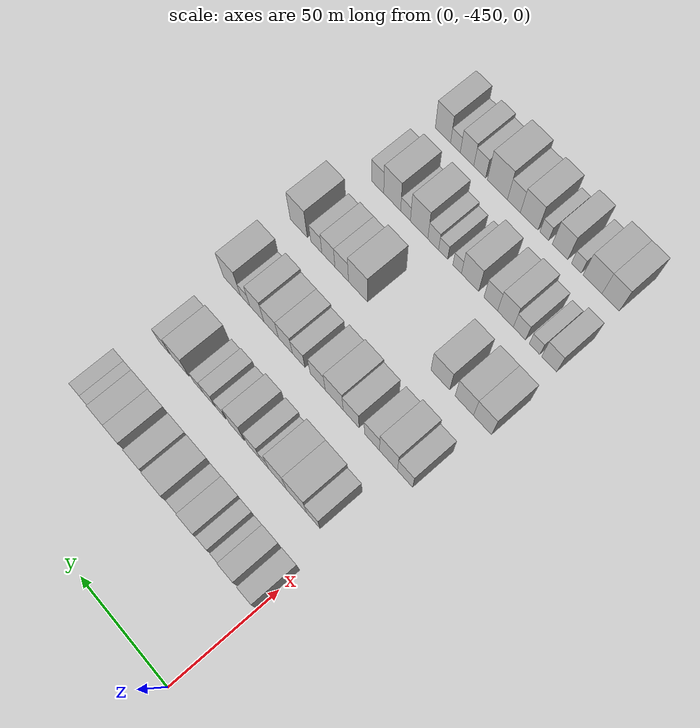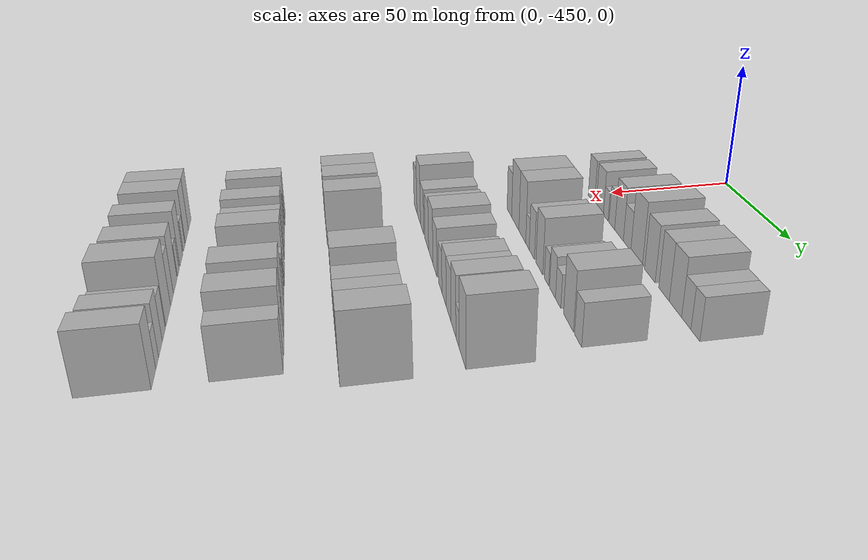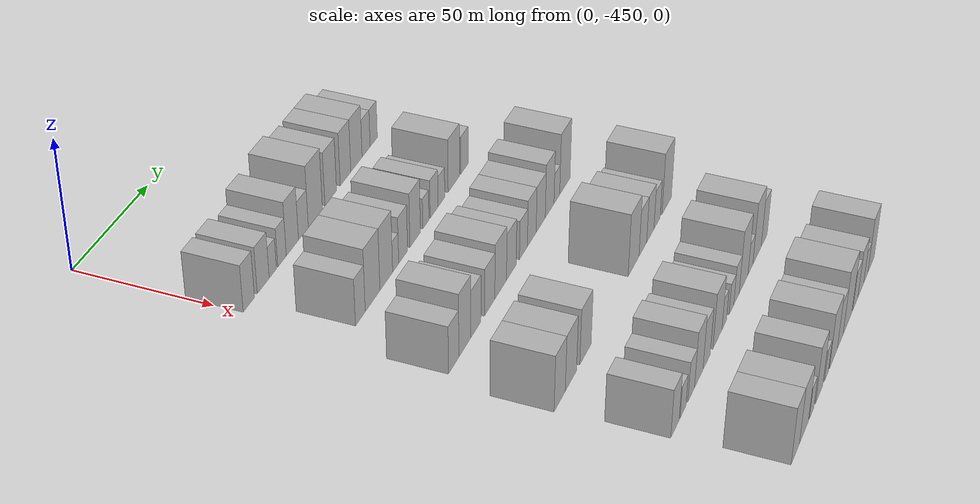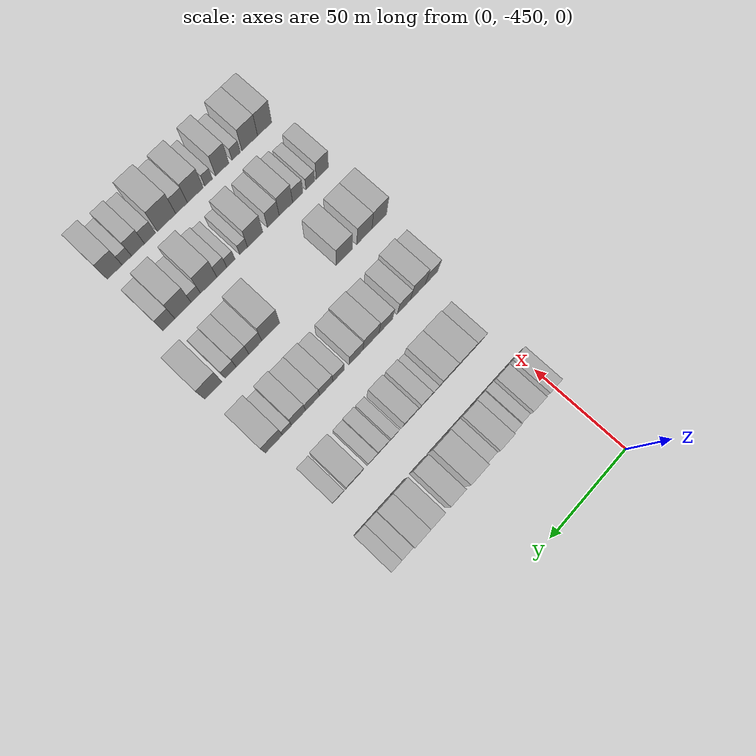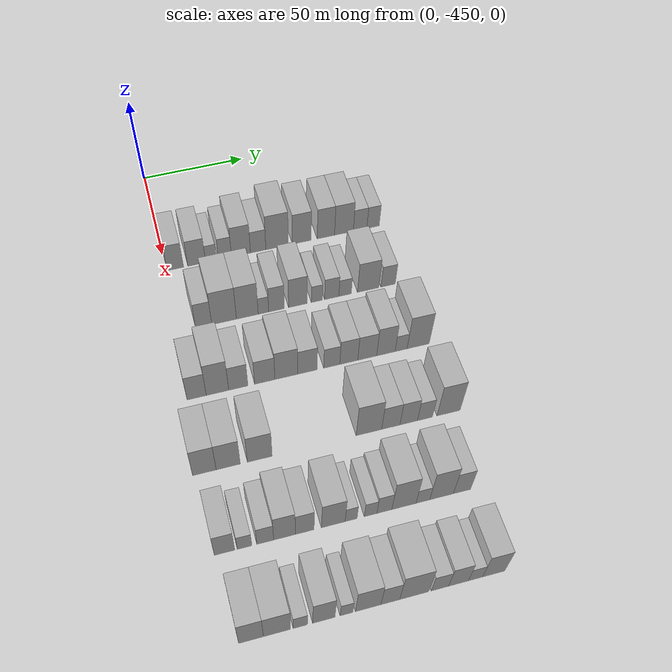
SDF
<sdf version="1.6">
 <world name="default">
  <model name="building_14">
   <static>1</static>
   <pose>50.0000 -445.6927 0 0.000000 0.000000 0.000000</pose>
   <link name="link">
    <pose>0 0 9.00 0 0 0</pose>
    <collision name="collision"><geometry><box><size>20.0000 7.8514 18.0000</size></box></geometry></collision>
    <visual name="visual">
     <cast_shadows>0</cast_shadows>
     <geometry><box><size>20.0000 7.8514 18.0000</size></box></geometry>
     <material>
      <script>
       <uri>model://HANNAS_wall/materials/scripts</uri>
       <uri>model://HANNAS_wall/materials/textures</uri>
       <name>vrc/HANNAS_wall</name>
      </script>
     </material>
    </visual>
   </link>
  </model>
  <model name="building_15">
   <static>1</static>
   <pose>50.0000 -435.5037 0 0.000000 0.000000 0.000000</pose>
   <link name="link">
    <pose>0 0 9.00 0 0 0</pose>
    <collision name="collision"><geometry><box><size>20.0000 8.5266 18.0000</size></box></geometry></collision>
    <visual name="visual">
     <cast_shadows>0</cast_shadows>
     <geometry><box><size>20.0000 8.5266 18.0000</size></box></geometry>
     <material>
      <script>
       <uri>model://HANNAS_wall/materials/scripts</uri>
       <uri>model://HANNAS_wall/materials/textures</uri>
       <name>vrc/HANNAS_wall</name>
      </script>
     </material>
    </visual>
   </link>
  </model>
  <model name="building_16">
   <static>1</static>
   <pose>50.0000 -428.6099 0 0.000000 0.000000 0.000000</pose>
   <link name="link">
    <pose>0 0 6.00 0 0 0</pose>
    <collision name="collision"><geometry><box><size>20.0000 5.2610 12.0000</size></box></geometry></collision>
    <visual name="visual">
     <cast_shadows>0</cast_shadows>
     <geometry><box><size>20.0000 5.2610 12.0000</size></box></geometry>
     <material>
      <script>
       <uri>model://HANNAS_wall/materials/scripts</uri>
       <uri>model://HANNAS_wall/materials/textures</uri>
       <name>vrc/HANNAS_wall</name>
      </script>
     </material>
    </visual>
   </link>
  </model>
  <model name="building_17">
   <static>1</static>
   <pose>50.0000 -421.8462 0 0.000000 0.000000 0.000000</pose>
   <link name="link">
    <pose>0 0 7.50 0 0 0</pose>
    <collision name="collision"><geometry><box><size>20.0000 6.2665 15.0000</size></box></geometry></collision>
    <visual name="visual">
     <cast_shadows>0</cast_shadows>
     <geometry><box><size>20.0000 6.2665 15.0000</size></box></geometry>
     <material>
      <script>
       <uri>model://HANNAS_wall/materials/scripts</uri>
       <uri>model://HANNAS_wall/materials/textures</uri>
       <name>vrc/HANNAS_wall</name>
      </script>
     </material>
    </visual>
   </link>
  </model>
  <model name="building_18">
   <static>1</static>
   <pose>50.0000 -414.1293 0 0.000000 0.000000 0.000000</pose>
   <link name="link">
    <pose>0 0 10.50 0 0 0</pose>
    <collision name="collision"><geometry><box><size>20.0000 9.1672 21.0000</size></box></geometry></collision>
    <visual name="visual">
     <cast_shadows>0</cast_shadows>
     <geometry><box><size>20.0000 9.1672 21.0000</size></box></geometry>
     <material>
      <script>
       <uri>model://HANNAS_wall/materials/scripts</uri>
       <uri>model://HANNAS_wall/materials/textures</uri>
       <name>vrc/HANNAS_wall</name>
      </script>
     </material>
    </visual>
   </link>
  </model>
  <model name="building_19">
   <static>1</static>
   <pose>50.0000 -405.8031 0 0.000000 0.000000 0.000000</pose>
   <link name="link">
    <pose>0 0 7.50 0 0 0</pose>
    <collision name="collision"><geometry><box><size>20.0000 7.4852 15.0000</size></box></geometry></collision>
    <visual name="visual">
     <cast_shadows>0</cast_shadows>
     <geometry><box><size>20.0000 7.4852 15.0000</size></box></geometry>
     <material>
      <script>
       <uri>model://HANNAS_wall/materials/scripts</uri>
       <uri>model://HANNAS_wall/materials/textures</uri>
       <name>vrc/HANNAS_wall</name>
      </script>
     </material>
    </visual>
   </link>
  </model>
  <model name="building_20">
   <static>1</static>
   <pose>50.0000 -396.5581 0 0.000000 0.000000 0.000000</pose>
   <link name="link">
    <pose>0 0 12.00 0 0 0</pose>
    <collision name="collision"><geometry><box><size>20.0000 11.0049 24.0000</size></box></geometry></collision>
    <visual name="visual">
     <cast_shadows>0</cast_shadows>
     <geometry><box><size>20.0000 11.0049 24.0000</size></box></geometry>
     <material>
      <script>
       <uri>model://HANNAS_wall/materials/scripts</uri>
       <uri>model://HANNAS_wall/materials/textures</uri>
       <name>vrc/HANNAS_wall</name>
      </script>
     </material>
    </visual>
   </link>
  </model>
  <model name="building_21">
   <static>1</static>
   <pose>50.0000 -384.4108 0 0.000000 0.000000 0.000000</pose>
   <link name="link">
    <pose>0 0 10.50 0 0 0</pose>
    <collision name="collision"><geometry><box><size>20.0000 9.2897 21.0000</size></box></geometry></collision>
    <visual name="visual">
     <cast_shadows>0</cast_shadows>
     <geometry><box><size>20.0000 9.2897 21.0000</size></box></geometry>
     <material>
      <script>
       <uri>model://HANNAS_wall/materials/scripts</uri>
       <uri>model://HANNAS_wall/materials/textures</uri>
       <name>vrc/HANNAS_wall</name>
      </script>
     </material>
    </visual>
   </link>
  </model>
  <model name="building_22">
   <static>1</static>
   <pose>50.0000 -372.4358 0 0.000000 0.000000 0.000000</pose>
   <link name="link">
    <pose>0 0 10.50 0 0 0</pose>
    <collision name="collision"><geometry><box><size>20.0000 8.6601 21.0000</size></box></geometry></collision>
    <visual name="visual">
     <cast_shadows>0</cast_shadows>
     <geometry><box><size>20.0000 8.6601 21.0000</size></box></geometry>
     <material>
      <script>
       <uri>model://HANNAS_wall/materials/scripts</uri>
       <uri>model://HANNAS_wall/materials/textures</uri>
       <name>vrc/HANNAS_wall</name>
      </script>
     </material>
    </visual>
   </link>
  </model>
  <model name="building_23">
   <static>1</static>
   <pose>50.0000 -363.3871 0 0.000000 0.000000 0.000000</pose>
   <link name="link">
    <pose>0 0 10.50 0 0 0</pose>
    <collision name="collision"><geometry><box><size>20.0000 9.4374 21.0000</size></box></geometry></collision>
    <visual name="visual">
     <cast_shadows>0</cast_shadows>
     <geometry><box><size>20.0000 9.4374 21.0000</size></box></geometry>
     <material>
      <script>
       <uri>model://HANNAS_wall/materials/scripts</uri>
       <uri>model://HANNAS_wall/materials/textures</uri>
       <name>vrc/HANNAS_wall</name>
      </script>
     </material>
    </visual>
   </link>
  </model>
  <model name="building_24">
   <static>1</static>
   <pose>50.0000 -355.2598 0 0.000000 0.000000 0.000000</pose>
   <link name="link">
    <pose>0 0 7.50 0 0 0</pose>
    <collision name="collision"><geometry><box><size>20.0000 6.8172 15.0000</size></box></geometry></collision>
    <visual name="visual">
     <cast_shadows>0</cast_shadows>
     <geometry><box><size>20.0000 6.8172 15.0000</size></box></geometry>
     <material>
      <script>
       <uri>model://HANNAS_wall/materials/scripts</uri>
       <uri>model://HANNAS_wall/materials/textures</uri>
       <name>vrc/HANNAS_wall</name>
      </script>
     </material>
    </visual>
   </link>
  </model>
  <model name="building_25">
   <static>1</static>
   <pose>50.0000 -348.7468 0 0.000000 0.000000 0.000000</pose>
   <link name="link">
    <pose>0 0 7.50 0 0 0</pose>
    <collision name="collision"><geometry><box><size>20.0000 6.2089 15.0000</size></box></geometry></collision>
    <visual name="visual">
     <cast_shadows>0</cast_shadows>
     <geometry><box><size>20.0000 6.2089 15.0000</size></box></geometry>
     <material>
      <script>
       <uri>model://HANNAS_wall/materials/scripts</uri>
       <uri>model://HANNAS_wall/materials/textures</uri>
       <name>vrc/HANNAS_wall</name>
      </script>
     </material>
    </visual>
   </link>
  </model>
  <model name="building_135">
   <static>1</static>
   <pose>85.0000 -439.4900 0 0.000000 0.000000 0.000000</pose>
   <link name="link">
    <pose>0 0 9.00 0 0 0</pose>
    <collision name="collision"><geometry><box><size>20.0000 7.4285 18.0000</size></box></geometry></collision>
    <visual name="visual">
     <cast_shadows>0</cast_shadows>
     <geometry><box><size>20.0000 7.4285 18.0000</size></box></geometry>
     <material>
      <script>
       <uri>model://HANNAS_wall/materials/scripts</uri>
       <uri>model://HANNAS_wall/materials/textures</uri>
       <name>vrc/HANNAS_wall</name>
      </script>
     </material>
    </visual>
   </link>
  </model>
  <model name="building_136">
   <static>1</static>
   <pose>85.0000 -430.0677 0 0.000000 0.000000 0.000000</pose>
   <link name="link">
    <pose>0 0 12.00 0 0 0</pose>
    <collision name="collision"><geometry><box><size>20.0000 11.4162 24.0000</size></box></geometry></collision>
    <visual name="visual">
     <cast_shadows>0</cast_shadows>
     <geometry><box><size>20.0000 11.4162 24.0000</size></box></geometry>
     <material>
      <script>
       <uri>model://HANNAS_wall/materials/scripts</uri>
       <uri>model://HANNAS_wall/materials/textures</uri>
       <name>vrc/HANNAS_wall</name>
      </script>
     </material>
    </visual>
   </link>
  </model>
  <model name="building_137">
   <static>1</static>
   <pose>85.0000 -419.3149 0 0.000000 0.000000 0.000000</pose>
   <link name="link">
    <pose>0 0 12.00 0 0 0</pose>
    <collision name="collision"><geometry><box><size>20.0000 10.0893 24.0000</size></box></geometry></collision>
    <visual name="visual">
     <cast_shadows>0</cast_shadows>
     <geometry><box><size>20.0000 10.0893 24.0000</size></box></geometry>
     <material>
      <script>
       <uri>model://HANNAS_wall/materials/scripts</uri>
       <uri>model://HANNAS_wall/materials/textures</uri>
       <name>vrc/HANNAS_wall</name>
      </script>
     </material>
    </visual>
   </link>
  </model>
  <model name="building_138">
   <static>1</static>
   <pose>85.0000 -411.8227 0 0.000000 0.000000 0.000000</pose>
   <link name="link">
    <pose>0 0 6.00 0 0 0</pose>
    <collision name="collision"><geometry><box><size>20.0000 4.8951 12.0000</size></box></geometry></collision>
    <visual name="visual">
     <cast_shadows>0</cast_shadows>
     <geometry><box><size>20.0000 4.8951 12.0000</size></box></geometry>
     <material>
      <script>
       <uri>model://HANNAS_wall/materials/scripts</uri>
       <uri>model://HANNAS_wall/materials/textures</uri>
       <name>vrc/HANNAS_wall</name>
      </script>
     </material>
    </visual>
   </link>
  </model>
  <model name="building_139">
   <static>1</static>
   <pose>85.0000 -405.7265 0 0.000000 0.000000 0.000000</pose>
   <link name="link">
    <pose>0 0 9.00 0 0 0</pose>
    <collision name="collision"><geometry><box><size>20.0000 7.2973 18.0000</size></box></geometry></collision>
    <visual name="visual">
     <cast_shadows>0</cast_shadows>
     <geometry><box><size>20.0000 7.2973 18.0000</size></box></geometry>
     <material>
      <script>
       <uri>model://HANNAS_wall/materials/scripts</uri>
       <uri>model://HANNAS_wall/materials/textures</uri>
       <name>vrc/HANNAS_wall</name>
      </script>
     </material>
    </visual>
   </link>
  </model>
  <model name="building_140">
   <static>1</static>
   <pose>85.0000 -395.7064 0 0.000000 0.000000 0.000000</pose>
   <link name="link">
    <pose>0 0 10.50 0 0 0</pose>
    <collision name="collision"><geometry><box><size>20.0000 8.7428 21.0000</size></box></geometry></collision>
    <visual name="visual">
     <cast_shadows>0</cast_shadows>
     <geometry><box><size>20.0000 8.7428 21.0000</size></box></geometry>
     <material>
      <script>
       <uri>model://HANNAS_wall/materials/scripts</uri>
       <uri>model://HANNAS_wall/materials/textures</uri>
       <name>vrc/HANNAS_wall</name>
      </script>
     </material>
    </visual>
   </link>
  </model>
  <model name="building_141">
   <static>1</static>
   <pose>85.0000 -386.6930 0 0.000000 0.000000 0.000000</pose>
   <link name="link">
    <pose>0 0 6.00 0 0 0</pose>
    <collision name="collision"><geometry><box><size>20.0000 5.2840 12.0000</size></box></geometry></collision>
    <visual name="visual">
     <cast_shadows>0</cast_shadows>
     <geometry><box><size>20.0000 5.2840 12.0000</size></box></geometry>
     <material>
      <script>
       <uri>model://HANNAS_wall/materials/scripts</uri>
       <uri>model://HANNAS_wall/materials/textures</uri>
       <name>vrc/HANNAS_wall</name>
      </script>
     </material>
    </visual>
   </link>
  </model>
  <model name="building_142">
   <static>1</static>
   <pose>85.0000 -379.6273 0 0.000000 0.000000 0.000000</pose>
   <link name="link">
    <pose>0 0 7.50 0 0 0</pose>
    <collision name="collision"><geometry><box><size>20.0000 6.8475 15.0000</size></box></geometry></collision>
    <visual name="visual">
     <cast_shadows>0</cast_shadows>
     <geometry><box><size>20.0000 6.8475 15.0000</size></box></geometry>
     <material>
      <script>
       <uri>model://HANNAS_wall/materials/scripts</uri>
       <uri>model://HANNAS_wall/materials/textures</uri>
       <name>vrc/HANNAS_wall</name>
      </script>
     </material>
    </visual>
   </link>
  </model>
  <model name="building_143">
   <static>1</static>
   <pose>85.0000 -373.2334 0 0.000000 0.000000 0.000000</pose>
   <link name="link">
    <pose>0 0 6.00 0 0 0</pose>
    <collision name="collision"><geometry><box><size>20.0000 5.9404 12.0000</size></box></geometry></collision>
    <visual name="visual">
     <cast_shadows>0</cast_shadows>
     <geometry><box><size>20.0000 5.9404 12.0000</size></box></geometry>
     <material>
      <script>
       <uri>model://HANNAS_wall/materials/scripts</uri>
       <uri>model://HANNAS_wall/materials/textures</uri>
       <name>vrc/HANNAS_wall</name>
      </script>
     </material>
    </visual>
   </link>
  </model>
  <model name="building_144">
   <static>1</static>
   <pose>85.0000 -362.0936 0 0.000000 0.000000 0.000000</pose>
   <link name="link">
    <pose>0 0 10.50 0 0 0</pose>
    <collision name="collision"><geometry><box><size>20.0000 10.3392 21.0000</size></box></geometry></collision>
    <visual name="visual">
     <cast_shadows>0</cast_shadows>
     <geometry><box><size>20.0000 10.3392 21.0000</size></box></geometry>
     <material>
      <script>
       <uri>model://HANNAS_wall/materials/scripts</uri>
       <uri>model://HANNAS_wall/materials/textures</uri>
       <name>vrc/HANNAS_wall</name>
      </script>
     </material>
    </visual>
   </link>
  </model>
  <model name="building_145">
   <static>1</static>
   <pose>85.0000 -352.4767 0 0.000000 0.000000 0.000000</pose>
   <link name="link">
    <pose>0 0 7.50 0 0 0</pose>
    <collision name="collision"><geometry><box><size>20.0000 6.8946 15.0000</size></box></geometry></collision>
    <visual name="visual">
     <cast_shadows>0</cast_shadows>
     <geometry><box><size>20.0000 6.8946 15.0000</size></box></geometry>
     <material>
      <script>
       <uri>model://HANNAS_wall/materials/scripts</uri>
       <uri>model://HANNAS_wall/materials/textures</uri>
       <name>vrc/HANNAS_wall</name>
      </script>
     </material>
    </visual>
   </link>
  </model>
  <model name="building_262">
   <static>1</static>
   <pose>120.0000 -449.8471 0 0.000000 0.000000 0.000000</pose>
   <link name="link">
    <pose>0 0 9.00 0 0 0</pose>
    <collision name="collision"><geometry><box><size>20.0000 8.3574 18.0000</size></box></geometry></collision>
    <visual name="visual">
     <cast_shadows>0</cast_shadows>
     <geometry><box><size>20.0000 8.3574 18.0000</size></box></geometry>
     <material>
      <script>
       <uri>model://HANNAS_wall/materials/scripts</uri>
       <uri>model://HANNAS_wall/materials/textures</uri>
       <name>vrc/HANNAS_wall</name>
      </script>
     </material>
    </visual>
   </link>
  </model>
  <model name="building_263">
   <static>1</static>
   <pose>120.0000 -440.7263 0 0.000000 0.000000 0.000000</pose>
   <link name="link">
    <pose>0 0 12.00 0 0 0</pose>
    <collision name="collision"><geometry><box><size>20.0000 9.8842 24.0000</size></box></geometry></collision>
    <visual name="visual">
     <cast_shadows>0</cast_shadows>
     <geometry><box><size>20.0000 9.8842 24.0000</size></box></geometry>
     <material>
      <script>
       <uri>model://HANNAS_wall/materials/scripts</uri>
       <uri>model://HANNAS_wall/materials/textures</uri>
       <name>vrc/HANNAS_wall</name>
      </script>
     </material>
    </visual>
   </link>
  </model>
  <model name="building_264">
   <static>1</static>
   <pose>120.0000 -431.5679 0 0.000000 0.000000 0.000000</pose>
   <link name="link">
    <pose>0 0 9.00 0 0 0</pose>
    <collision name="collision"><geometry><box><size>20.0000 8.4324 18.0000</size></box></geometry></collision>
    <visual name="visual">
     <cast_shadows>0</cast_shadows>
     <geometry><box><size>20.0000 8.4324 18.0000</size></box></geometry>
     <material>
      <script>
       <uri>model://HANNAS_wall/materials/scripts</uri>
       <uri>model://HANNAS_wall/materials/textures</uri>
       <name>vrc/HANNAS_wall</name>
      </script>
     </material>
    </visual>
   </link>
  </model>
  <model name="building_265">
   <static>1</static>
   <pose>120.0000 -419.8614 0 0.000000 0.000000 0.000000</pose>
   <link name="link">
    <pose>0 0 9.00 0 0 0</pose>
    <collision name="collision"><geometry><box><size>20.0000 8.9806 18.0000</size></box></geometry></collision>
    <visual name="visual">
     <cast_shadows>0</cast_shadows>
     <geometry><box><size>20.0000 8.9806 18.0000</size></box></geometry>
     <material>
      <script>
       <uri>model://HANNAS_wall/materials/scripts</uri>
       <uri>model://HANNAS_wall/materials/textures</uri>
       <name>vrc/HANNAS_wall</name>
      </script>
     </material>
    </visual>
   </link>
  </model>
  <model name="building_266">
   <static>1</static>
   <pose>120.0000 -410.2406 0 0.000000 0.000000 0.000000</pose>
   <link name="link">
    <pose>0 0 10.50 0 0 0</pose>
    <collision name="collision"><geometry><box><size>20.0000 10.2610 21.0000</size></box></geometry></collision>
    <visual name="visual">
     <cast_shadows>0</cast_shadows>
     <geometry><box><size>20.0000 10.2610 21.0000</size></box></geometry>
     <material>
      <script>
       <uri>model://HANNAS_wall/materials/scripts</uri>
       <uri>model://HANNAS_wall/materials/textures</uri>
       <name>vrc/HANNAS_wall</name>
      </script>
     </material>
    </visual>
   </link>
  </model>
  <model name="building_267">
   <static>1</static>
   <pose>120.0000 -400.7564 0 0.000000 0.000000 0.000000</pose>
   <link name="link">
    <pose>0 0 9.00 0 0 0</pose>
    <collision name="collision"><geometry><box><size>20.0000 8.7073 18.0000</size></box></geometry></collision>
    <visual name="visual">
     <cast_shadows>0</cast_shadows>
     <geometry><box><size>20.0000 8.7073 18.0000</size></box></geometry>
     <material>
      <script>
       <uri>model://HANNAS_wall/materials/scripts</uri>
       <uri>model://HANNAS_wall/materials/textures</uri>
       <name>vrc/HANNAS_wall</name>
      </script>
     </material>
    </visual>
   </link>
  </model>
  <model name="building_268">
   <static>1</static>
   <pose>120.0000 -389.7347 0 0.000000 0.000000 0.000000</pose>
   <link name="link">
    <pose>0 0 7.50 0 0 0</pose>
    <collision name="collision"><geometry><box><size>20.0000 7.3361 15.0000</size></box></geometry></collision>
    <visual name="visual">
     <cast_shadows>0</cast_shadows>
     <geometry><box><size>20.0000 7.3361 15.0000</size></box></geometry>
     <material>
      <script>
       <uri>model://HANNAS_wall/materials/scripts</uri>
       <uri>model://HANNAS_wall/materials/textures</uri>
       <name>vrc/HANNAS_wall</name>
      </script>
     </material>
    </visual>
   </link>
  </model>
  <model name="building_269">
   <static>1</static>
   <pose>120.0000 -381.9513 0 0.000000 0.000000 0.000000</pose>
   <link name="link">
    <pose>0 0 9.00 0 0 0</pose>
    <collision name="collision"><geometry><box><size>20.0000 8.2306 18.0000</size></box></geometry></collision>
    <visual name="visual">
     <cast_shadows>0</cast_shadows>
     <geometry><box><size>20.0000 8.2306 18.0000</size></box></geometry>
     <material>
      <script>
       <uri>model://HANNAS_wall/materials/scripts</uri>
       <uri>model://HANNAS_wall/materials/textures</uri>
       <name>vrc/HANNAS_wall</name>
      </script>
     </material>
    </visual>
   </link>
  </model>
  <model name="building_270">
   <static>1</static>
   <pose>120.0000 -373.4918 0 0.000000 0.000000 0.000000</pose>
   <link name="link">
    <pose>0 0 9.00 0 0 0</pose>
    <collision name="collision"><geometry><box><size>20.0000 8.6884 18.0000</size></box></geometry></collision>
    <visual name="visual">
     <cast_shadows>0</cast_shadows>
     <geometry><box><size>20.0000 8.6884 18.0000</size></box></geometry>
     <material>
      <script>
       <uri>model://HANNAS_wall/materials/scripts</uri>
       <uri>model://HANNAS_wall/materials/textures</uri>
       <name>vrc/HANNAS_wall</name>
      </script>
     </material>
    </visual>
   </link>
  </model>
  <model name="building_271">
   <static>1</static>
   <pose>120.0000 -364.8916 0 0.000000 0.000000 0.000000</pose>
   <link name="link">
    <pose>0 0 10.50 0 0 0</pose>
    <collision name="collision"><geometry><box><size>20.0000 8.5121 21.0000</size></box></geometry></collision>
    <visual name="visual">
     <cast_shadows>0</cast_shadows>
     <geometry><box><size>20.0000 8.5121 21.0000</size></box></geometry>
     <material>
      <script>
       <uri>model://HANNAS_wall/materials/scripts</uri>
       <uri>model://HANNAS_wall/materials/textures</uri>
       <name>vrc/HANNAS_wall</name>
      </script>
     </material>
    </visual>
   </link>
  </model>
  <model name="building_272">
   <static>1</static>
   <pose>120.0000 -357.8338 0 0.000000 0.000000 0.000000</pose>
   <link name="link">
    <pose>0 0 6.00 0 0 0</pose>
    <collision name="collision"><geometry><box><size>20.0000 5.6034 12.0000</size></box></geometry></collision>
    <visual name="visual">
     <cast_shadows>0</cast_shadows>
     <geometry><box><size>20.0000 5.6034 12.0000</size></box></geometry>
     <material>
      <script>
       <uri>model://HANNAS_wall/materials/scripts</uri>
       <uri>model://HANNAS_wall/materials/textures</uri>
       <name>vrc/HANNAS_wall</name>
      </script>
     </material>
    </visual>
   </link>
  </model>
  <model name="building_273">
   <static>1</static>
   <pose>120.0000 -349.8661 0 0.000000 0.000000 0.000000</pose>
   <link name="link">
    <pose>0 0 12.00 0 0 0</pose>
    <collision name="collision"><geometry><box><size>20.0000 10.3319 24.0000</size></box></geometry></collision>
    <visual name="visual">
     <cast_shadows>0</cast_shadows>
     <geometry><box><size>20.0000 10.3319 24.0000</size></box></geometry>
     <material>
      <script>
       <uri>model://HANNAS_wall/materials/scripts</uri>
       <uri>model://HANNAS_wall/materials/textures</uri>
       <name>vrc/HANNAS_wall</name>
      </script>
     </material>
    </visual>
   </link>
  </model>
  <model name="building_385">
   <static>1</static>
   <pose>155.0000 -453.8075 0 0.000000 0.000000 0.000000</pose>
   <link name="link">
    <pose>0 0 10.50 0 0 0</pose>
    <collision name="collision"><geometry><box><size>20.0000 9.8011 21.0000</size></box></geometry></collision>
    <visual name="visual">
     <cast_shadows>0</cast_shadows>
     <geometry><box><size>20.0000 9.8011 21.0000</size></box></geometry>
     <material>
      <script>
       <uri>model://HANNAS_wall/materials/scripts</uri>
       <uri>model://HANNAS_wall/materials/textures</uri>
       <name>vrc/HANNAS_wall</name>
      </script>
     </material>
    </visual>
   </link>
  </model>
  <model name="building_386">
   <static>1</static>
   <pose>155.0000 -443.8657 0 0.000000 0.000000 0.000000</pose>
   <link name="link">
    <pose>0 0 10.50 0 0 0</pose>
    <collision name="collision"><geometry><box><size>20.0000 10.0826 21.0000</size></box></geometry></collision>
    <visual name="visual">
     <cast_shadows>0</cast_shadows>
     <geometry><box><size>20.0000 10.0826 21.0000</size></box></geometry>
     <material>
      <script>
       <uri>model://HANNAS_wall/materials/scripts</uri>
       <uri>model://HANNAS_wall/materials/textures</uri>
       <name>vrc/HANNAS_wall</name>
      </script>
     </material>
    </visual>
   </link>
  </model>
  <model name="building_387">
   <static>1</static>
   <pose>155.0000 -430.5977 0 0.000000 0.000000 0.000000</pose>
   <link name="link">
    <pose>0 0 10.50 0 0 0</pose>
    <collision name="collision"><geometry><box><size>20.0000 10.4533 21.0000</size></box></geometry></collision>
    <visual name="visual">
     <cast_shadows>0</cast_shadows>
     <geometry><box><size>20.0000 10.4533 21.0000</size></box></geometry>
     <material>
      <script>
       <uri>model://HANNAS_wall/materials/scripts</uri>
       <uri>model://HANNAS_wall/materials/textures</uri>
       <name>vrc/HANNAS_wall</name>
      </script>
     </material>
    </visual>
   </link>
  </model>
  <model name="building_388">
   <static>1</static>
   <pose>155.0000 -383.6494 0 0.000000 0.000000 0.000000</pose>
   <link name="link">
    <pose>0 0 12.00 0 0 0</pose>
    <collision name="collision"><geometry><box><size>20.0000 11.1478 24.0000</size></box></geometry></collision>
    <visual name="visual">
     <cast_shadows>0</cast_shadows>
     <geometry><box><size>20.0000 11.1478 24.0000</size></box></geometry>
     <material>
      <script>
       <uri>model://HANNAS_wall/materials/scripts</uri>
       <uri>model://HANNAS_wall/materials/textures</uri>
       <name>vrc/HANNAS_wall</name>
      </script>
     </material>
    </visual>
   </link>
  </model>
  <model name="building_389">
   <static>1</static>
   <pose>155.0000 -374.0500 0 0.000000 0.000000 0.000000</pose>
   <link name="link">
    <pose>0 0 9.00 0 0 0</pose>
    <collision name="collision"><geometry><box><size>20.0000 8.0509 18.0000</size></box></geometry></collision>
    <visual name="visual">
     <cast_shadows>0</cast_shadows>
     <geometry><box><size>20.0000 8.0509 18.0000</size></box></geometry>
     <material>
      <script>
       <uri>model://HANNAS_wall/materials/scripts</uri>
       <uri>model://HANNAS_wall/materials/textures</uri>
       <name>vrc/HANNAS_wall</name>
      </script>
     </material>
    </visual>
   </link>
  </model>
  <model name="building_390">
   <static>1</static>
   <pose>155.0000 -366.1309 0 0.000000 0.000000 0.000000</pose>
   <link name="link">
    <pose>0 0 9.00 0 0 0</pose>
    <collision name="collision"><geometry><box><size>20.0000 7.7874 18.0000</size></box></geometry></collision>
    <visual name="visual">
     <cast_shadows>0</cast_shadows>
     <geometry><box><size>20.0000 7.7874 18.0000</size></box></geometry>
     <material>
      <script>
       <uri>model://HANNAS_wall/materials/scripts</uri>
       <uri>model://HANNAS_wall/materials/textures</uri>
       <name>vrc/HANNAS_wall</name>
      </script>
     </material>
    </visual>
   </link>
  </model>
  <model name="building_391">
   <static>1</static>
   <pose>155.0000 -358.8824 0 0.000000 0.000000 0.000000</pose>
   <link name="link">
    <pose>0 0 7.50 0 0 0</pose>
    <collision name="collision"><geometry><box><size>20.0000 6.7094 15.0000</size></box></geometry></collision>
    <visual name="visual">
     <cast_shadows>0</cast_shadows>
     <geometry><box><size>20.0000 6.7094 15.0000</size></box></geometry>
     <material>
      <script>
       <uri>model://HANNAS_wall/materials/scripts</uri>
       <uri>model://HANNAS_wall/materials/textures</uri>
       <name>vrc/HANNAS_wall</name>
      </script>
     </material>
    </visual>
   </link>
  </model>
  <model name="building_392">
   <static>1</static>
   <pose>155.0000 -348.3313 0 0.000000 0.000000 0.000000</pose>
   <link name="link">
    <pose>0 0 12.00 0 0 0</pose>
    <collision name="collision"><geometry><box><size>20.0000 10.3928 24.0000</size></box></geometry></collision>
    <visual name="visual">
     <cast_shadows>0</cast_shadows>
     <geometry><box><size>20.0000 10.3928 24.0000</size></box></geometry>
     <material>
      <script>
       <uri>model://HANNAS_wall/materials/scripts</uri>
       <uri>model://HANNAS_wall/materials/textures</uri>
       <name>vrc/HANNAS_wall</name>
      </script>
     </material>
    </visual>
   </link>
  </model>
  <model name="building_512">
   <static>1</static>
   <pose>190.0000 -453.1891 0 0.000000 0.000000 0.000000</pose>
   <link name="link">
    <pose>0 0 9.00 0 0 0</pose>
    <collision name="collision"><geometry><box><size>20.0000 8.1238 18.0000</size></box></geometry></collision>
    <visual name="visual">
     <cast_shadows>0</cast_shadows>
     <geometry><box><size>20.0000 8.1238 18.0000</size></box></geometry>
     <material>
      <script>
       <uri>model://HANNAS_wall/materials/scripts</uri>
       <uri>model://HANNAS_wall/materials/textures</uri>
       <name>vrc/HANNAS_wall</name>
      </script>
     </material>
    </visual>
   </link>
  </model>
  <model name="building_513">
   <static>1</static>
   <pose>190.0000 -445.2236 0 0.000000 0.000000 0.000000</pose>
   <link name="link">
    <pose>0 0 6.00 0 0 0</pose>
    <collision name="collision"><geometry><box><size>20.0000 5.8072 12.0000</size></box></geometry></collision>
    <visual name="visual">
     <cast_shadows>0</cast_shadows>
     <geometry><box><size>20.0000 5.8072 12.0000</size></box></geometry>
     <material>
      <script>
       <uri>model://HANNAS_wall/materials/scripts</uri>
       <uri>model://HANNAS_wall/materials/textures</uri>
       <name>vrc/HANNAS_wall</name>
      </script>
     </material>
    </visual>
   </link>
  </model>
  <model name="building_514">
   <static>1</static>
   <pose>190.0000 -436.9491 0 0.000000 0.000000 0.000000</pose>
   <link name="link">
    <pose>0 0 7.50 0 0 0</pose>
    <collision name="collision"><geometry><box><size>20.0000 6.7417 15.0000</size></box></geometry></collision>
    <visual name="visual">
     <cast_shadows>0</cast_shadows>
     <geometry><box><size>20.0000 6.7417 15.0000</size></box></geometry>
     <material>
      <script>
       <uri>model://HANNAS_wall/materials/scripts</uri>
       <uri>model://HANNAS_wall/materials/textures</uri>
       <name>vrc/HANNAS_wall</name>
      </script>
     </material>
    </visual>
   </link>
  </model>
  <model name="building_515">
   <static>1</static>
   <pose>190.0000 -429.1963 0 0.000000 0.000000 0.000000</pose>
   <link name="link">
    <pose>0 0 10.50 0 0 0</pose>
    <collision name="collision"><geometry><box><size>20.0000 8.7639 21.0000</size></box></geometry></collision>
    <visual name="visual">
     <cast_shadows>0</cast_shadows>
     <geometry><box><size>20.0000 8.7639 21.0000</size></box></geometry>
     <material>
      <script>
       <uri>model://HANNAS_wall/materials/scripts</uri>
       <uri>model://HANNAS_wall/materials/textures</uri>
       <name>vrc/HANNAS_wall</name>
      </script>
     </material>
    </visual>
   </link>
  </model>
  <model name="building_516">
   <static>1</static>
   <pose>190.0000 -421.0103 0 0.000000 0.000000 0.000000</pose>
   <link name="link">
    <pose>0 0 9.00 0 0 0</pose>
    <collision name="collision"><geometry><box><size>20.0000 7.6082 18.0000</size></box></geometry></collision>
    <visual name="visual">
     <cast_shadows>0</cast_shadows>
     <geometry><box><size>20.0000 7.6082 18.0000</size></box></geometry>
     <material>
      <script>
       <uri>model://HANNAS_wall/materials/scripts</uri>
       <uri>model://HANNAS_wall/materials/textures</uri>
       <name>vrc/HANNAS_wall</name>
      </script>
     </material>
    </visual>
   </link>
  </model>
  <model name="building_517">
   <static>1</static>
   <pose>190.0000 -409.3141 0 0.000000 0.000000 0.000000</pose>
   <link name="link">
    <pose>0 0 10.50 0 0 0</pose>
    <collision name="collision"><geometry><box><size>20.0000 9.7842 21.0000</size></box></geometry></collision>
    <visual name="visual">
     <cast_shadows>0</cast_shadows>
     <geometry><box><size>20.0000 9.7842 21.0000</size></box></geometry>
     <material>
      <script>
       <uri>model://HANNAS_wall/materials/scripts</uri>
       <uri>model://HANNAS_wall/materials/textures</uri>
       <name>vrc/HANNAS_wall</name>
      </script>
     </material>
    </visual>
   </link>
  </model>
  <model name="building_518">
   <static>1</static>
   <pose>190.0000 -401.9672 0 0.000000 0.000000 0.000000</pose>
   <link name="link">
    <pose>0 0 6.00 0 0 0</pose>
    <collision name="collision"><geometry><box><size>20.0000 4.9097 12.0000</size></box></geometry></collision>
    <visual name="visual">
     <cast_shadows>0</cast_shadows>
     <geometry><box><size>20.0000 4.9097 12.0000</size></box></geometry>
     <material>
      <script>
       <uri>model://HANNAS_wall/materials/scripts</uri>
       <uri>model://HANNAS_wall/materials/textures</uri>
       <name>vrc/HANNAS_wall</name>
      </script>
     </material>
    </visual>
   </link>
  </model>
  <model name="building_519">
   <static>1</static>
   <pose>190.0000 -393.8945 0 0.000000 0.000000 0.000000</pose>
   <link name="link">
    <pose>0 0 6.00 0 0 0</pose>
    <collision name="collision"><geometry><box><size>20.0000 5.2357 12.0000</size></box></geometry></collision>
    <visual name="visual">
     <cast_shadows>0</cast_shadows>
     <geometry><box><size>20.0000 5.2357 12.0000</size></box></geometry>
     <material>
      <script>
       <uri>model://HANNAS_wall/materials/scripts</uri>
       <uri>model://HANNAS_wall/materials/textures</uri>
       <name>vrc/HANNAS_wall</name>
      </script>
     </material>
    </visual>
   </link>
  </model>
  <model name="building_520">
   <static>1</static>
   <pose>190.0000 -388.1598 0 0.000000 0.000000 0.000000</pose>
   <link name="link">
    <pose>0 0 7.50 0 0 0</pose>
    <collision name="collision"><geometry><box><size>20.0000 6.2336 15.0000</size></box></geometry></collision>
    <visual name="visual">
     <cast_shadows>0</cast_shadows>
     <geometry><box><size>20.0000 6.2336 15.0000</size></box></geometry>
     <material>
      <script>
       <uri>model://HANNAS_wall/materials/scripts</uri>
       <uri>model://HANNAS_wall/materials/textures</uri>
       <name>vrc/HANNAS_wall</name>
      </script>
     </material>
    </visual>
   </link>
  </model>
  <model name="building_521">
   <static>1</static>
   <pose>190.0000 -379.9480 0 0.000000 0.000000 0.000000</pose>
   <link name="link">
    <pose>0 0 12.00 0 0 0</pose>
    <collision name="collision"><geometry><box><size>20.0000 10.1900 24.0000</size></box></geometry></collision>
    <visual name="visual">
     <cast_shadows>0</cast_shadows>
     <geometry><box><size>20.0000 10.1900 24.0000</size></box></geometry>
     <material>
      <script>
       <uri>model://HANNAS_wall/materials/scripts</uri>
       <uri>model://HANNAS_wall/materials/textures</uri>
       <name>vrc/HANNAS_wall</name>
      </script>
     </material>
    </visual>
   </link>
  </model>
  <model name="building_522">
   <static>1</static>
   <pose>190.0000 -371.9678 0 0.000000 0.000000 0.000000</pose>
   <link name="link">
    <pose>0 0 6.00 0 0 0</pose>
    <collision name="collision"><geometry><box><size>20.0000 5.7704 12.0000</size></box></geometry></collision>
    <visual name="visual">
     <cast_shadows>0</cast_shadows>
     <geometry><box><size>20.0000 5.7704 12.0000</size></box></geometry>
     <material>
      <script>
       <uri>model://HANNAS_wall/materials/scripts</uri>
       <uri>model://HANNAS_wall/materials/textures</uri>
       <name>vrc/HANNAS_wall</name>
      </script>
     </material>
    </visual>
   </link>
  </model>
  <model name="building_523">
   <static>1</static>
   <pose>190.0000 -364.0601 0 0.000000 0.000000 0.000000</pose>
   <link name="link">
    <pose>0 0 12.00 0 0 0</pose>
    <collision name="collision"><geometry><box><size>20.0000 10.0450 24.0000</size></box></geometry></collision>
    <visual name="visual">
     <cast_shadows>0</cast_shadows>
     <geometry><box><size>20.0000 10.0450 24.0000</size></box></geometry>
     <material>
      <script>
       <uri>model://HANNAS_wall/materials/scripts</uri>
       <uri>model://HANNAS_wall/materials/textures</uri>
       <name>vrc/HANNAS_wall</name>
      </script>
     </material>
    </visual>
   </link>
  </model>
  <model name="building_524">
   <static>1</static>
   <pose>190.0000 -355.3527 0 0.000000 0.000000 0.000000</pose>
   <link name="link">
    <pose>0 0 9.00 0 0 0</pose>
    <collision name="collision"><geometry><box><size>20.0000 7.3697 18.0000</size></box></geometry></collision>
    <visual name="visual">
     <cast_shadows>0</cast_shadows>
     <geometry><box><size>20.0000 7.3697 18.0000</size></box></geometry>
     <material>
      <script>
       <uri>model://HANNAS_wall/materials/scripts</uri>
       <uri>model://HANNAS_wall/materials/textures</uri>
       <name>vrc/HANNAS_wall</name>
      </script>
     </material>
    </visual>
   </link>
  </model>
  <model name="building_644">
   <static>1</static>
   <pose>225.0000 -450.9710 0 0.000000 0.000000 0.000000</pose>
   <link name="link">
    <pose>0 0 10.50 0 0 0</pose>
    <collision name="collision"><geometry><box><size>20.0000 9.3770 21.0000</size></box></geometry></collision>
    <visual name="visual">
     <cast_shadows>0</cast_shadows>
     <geometry><box><size>20.0000 9.3770 21.0000</size></box></geometry>
     <material>
      <script>
       <uri>model://HANNAS_wall/materials/scripts</uri>
       <uri>model://HANNAS_wall/materials/textures</uri>
       <name>vrc/HANNAS_wall</name>
      </script>
     </material>
    </visual>
   </link>
  </model>
  <model name="building_645">
   <static>1</static>
   <pose>225.0000 -441.1054 0 0.000000 0.000000 0.000000</pose>
   <link name="link">
    <pose>0 0 10.50 0 0 0</pose>
    <collision name="collision"><geometry><box><size>20.0000 10.3541 21.0000</size></box></geometry></collision>
    <visual name="visual">
     <cast_shadows>0</cast_shadows>
     <geometry><box><size>20.0000 10.3541 21.0000</size></box></geometry>
     <material>
      <script>
       <uri>model://HANNAS_wall/materials/scripts</uri>
       <uri>model://HANNAS_wall/materials/textures</uri>
       <name>vrc/HANNAS_wall</name>
      </script>
     </material>
    </visual>
   </link>
  </model>
  <model name="building_646">
   <static>1</static>
   <pose>225.0000 -432.1969 0 0.000000 0.000000 0.000000</pose>
   <link name="link">
    <pose>0 0 6.00 0 0 0</pose>
    <collision name="collision"><geometry><box><size>20.0000 5.4629 12.0000</size></box></geometry></collision>
    <visual name="visual">
     <cast_shadows>0</cast_shadows>
     <geometry><box><size>20.0000 5.4629 12.0000</size></box></geometry>
     <material>
      <script>
       <uri>model://HANNAS_wall/materials/scripts</uri>
       <uri>model://HANNAS_wall/materials/textures</uri>
       <name>vrc/HANNAS_wall</name>
      </script>
     </material>
    </visual>
   </link>
  </model>
  <model name="building_647">
   <static>1</static>
   <pose>225.0000 -423.1380 0 0.000000 0.000000 0.000000</pose>
   <link name="link">
    <pose>0 0 10.50 0 0 0</pose>
    <collision name="collision"><geometry><box><size>20.0000 8.6548 21.0000</size></box></geometry></collision>
    <visual name="visual">
     <cast_shadows>0</cast_shadows>
     <geometry><box><size>20.0000 8.6548 21.0000</size></box></geometry>
     <material>
      <script>
       <uri>model://HANNAS_wall/materials/scripts</uri>
       <uri>model://HANNAS_wall/materials/textures</uri>
       <name>vrc/HANNAS_wall</name>
      </script>
     </material>
    </visual>
   </link>
  </model>
  <model name="building_648">
   <static>1</static>
   <pose>225.0000 -414.3248 0 0.000000 0.000000 0.000000</pose>
   <link name="link">
    <pose>0 0 6.00 0 0 0</pose>
    <collision name="collision"><geometry><box><size>20.0000 4.9717 12.0000</size></box></geometry></collision>
    <visual name="visual">
     <cast_shadows>0</cast_shadows>
     <geometry><box><size>20.0000 4.9717 12.0000</size></box></geometry>
     <material>
      <script>
       <uri>model://HANNAS_wall/materials/scripts</uri>
       <uri>model://HANNAS_wall/materials/textures</uri>
       <name>vrc/HANNAS_wall</name>
      </script>
     </material>
    </visual>
   </link>
  </model>
  <model name="building_649">
   <static>1</static>
   <pose>225.0000 -405.8157 0 0.000000 0.000000 0.000000</pose>
   <link name="link">
    <pose>0 0 10.50 0 0 0</pose>
    <collision name="collision"><geometry><box><size>20.0000 10.0464 21.0000</size></box></geometry></collision>
    <visual name="visual">
     <cast_shadows>0</cast_shadows>
     <geometry><box><size>20.0000 10.0464 21.0000</size></box></geometry>
     <material>
      <script>
       <uri>model://HANNAS_wall/materials/scripts</uri>
       <uri>model://HANNAS_wall/materials/textures</uri>
       <name>vrc/HANNAS_wall</name>
      </script>
     </material>
    </visual>
   </link>
  </model>
  <model name="building_650">
   <static>1</static>
   <pose>225.0000 -397.0976 0 0.000000 0.000000 0.000000</pose>
   <link name="link">
    <pose>0 0 9.00 0 0 0</pose>
    <collision name="collision"><geometry><box><size>20.0000 7.3898 18.0000</size></box></geometry></collision>
    <visual name="visual">
     <cast_shadows>0</cast_shadows>
     <geometry><box><size>20.0000 7.3898 18.0000</size></box></geometry>
     <material>
      <script>
       <uri>model://HANNAS_wall/materials/scripts</uri>
       <uri>model://HANNAS_wall/materials/textures</uri>
       <name>vrc/HANNAS_wall</name>
      </script>
     </material>
    </visual>
   </link>
  </model>
  <model name="building_651">
   <static>1</static>
   <pose>225.0000 -387.5868 0 0.000000 0.000000 0.000000</pose>
   <link name="link">
    <pose>0 0 12.00 0 0 0</pose>
    <collision name="collision"><geometry><box><size>20.0000 11.6320 24.0000</size></box></geometry></collision>
    <visual name="visual">
     <cast_shadows>0</cast_shadows>
     <geometry><box><size>20.0000 11.6320 24.0000</size></box></geometry>
     <material>
      <script>
       <uri>model://HANNAS_wall/materials/scripts</uri>
       <uri>model://HANNAS_wall/materials/textures</uri>
       <name>vrc/HANNAS_wall</name>
      </script>
     </material>
    </visual>
   </link>
  </model>
  <model name="building_652">
   <static>1</static>
   <pose>225.0000 -377.3005 0 0.000000 0.000000 0.000000</pose>
   <link name="link">
    <pose>0 0 7.50 0 0 0</pose>
    <collision name="collision"><geometry><box><size>20.0000 6.9406 15.0000</size></box></geometry></collision>
    <visual name="visual">
     <cast_shadows>0</cast_shadows>
     <geometry><box><size>20.0000 6.9406 15.0000</size></box></geometry>
     <material>
      <script>
       <uri>model://HANNAS_wall/materials/scripts</uri>
       <uri>model://HANNAS_wall/materials/textures</uri>
       <name>vrc/HANNAS_wall</name>
      </script>
     </material>
    </visual>
   </link>
  </model>
  <model name="building_653">
   <static>1</static>
   <pose>225.0000 -369.8423 0 0.000000 0.000000 0.000000</pose>
   <link name="link">
    <pose>0 0 9.00 0 0 0</pose>
    <collision name="collision"><geometry><box><size>20.0000 7.9758 18.0000</size></box></geometry></collision>
    <visual name="visual">
     <cast_shadows>0</cast_shadows>
     <geometry><box><size>20.0000 7.9758 18.0000</size></box></geometry>
     <material>
      <script>
       <uri>model://HANNAS_wall/materials/scripts</uri>
       <uri>model://HANNAS_wall/materials/textures</uri>
       <name>vrc/HANNAS_wall</name>
      </script>
     </material>
    </visual>
   </link>
  </model>
  <model name="building_654">
   <static>1</static>
   <pose>225.0000 -362.9757 0 0.000000 0.000000 0.000000</pose>
   <link name="link">
    <pose>0 0 6.00 0 0 0</pose>
    <collision name="collision"><geometry><box><size>20.0000 5.7575 12.0000</size></box></geometry></collision>
    <visual name="visual">
     <cast_shadows>0</cast_shadows>
     <geometry><box><size>20.0000 5.7575 12.0000</size></box></geometry>
     <material>
      <script>
       <uri>model://HANNAS_wall/materials/scripts</uri>
       <uri>model://HANNAS_wall/materials/textures</uri>
       <name>vrc/HANNAS_wall</name>
      </script>
     </material>
    </visual>
   </link>
  </model>
  <model name="building_655">
   <static>1</static>
   <pose>225.0000 -355.5436 0 0.000000 0.000000 0.000000</pose>
   <link name="link">
    <pose>0 0 10.50 0 0 0</pose>
    <collision name="collision"><geometry><box><size>20.0000 9.1066 21.0000</size></box></geometry></collision>
    <visual name="visual">
     <cast_shadows>0</cast_shadows>
     <geometry><box><size>20.0000 9.1066 21.0000</size></box></geometry>
     <material>
      <script>
       <uri>model://HANNAS_wall/materials/scripts</uri>
       <uri>model://HANNAS_wall/materials/textures</uri>
       <name>vrc/HANNAS_wall</name>
      </script>
     </material>
    </visual>
   </link>
  </model>
 </world>
</sdf>
